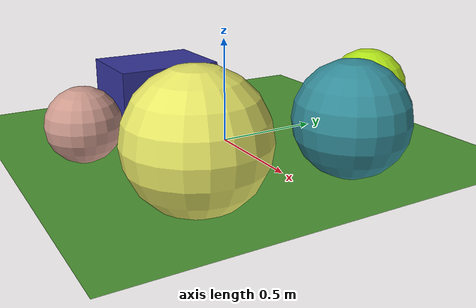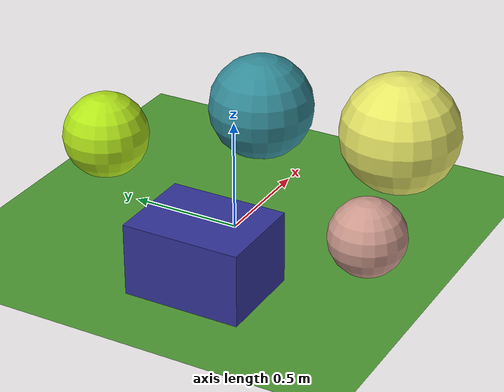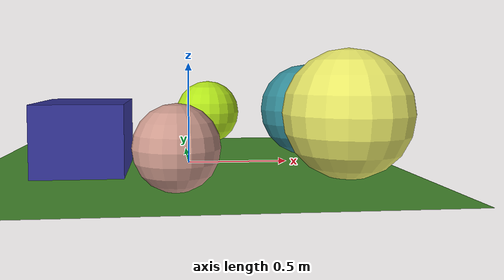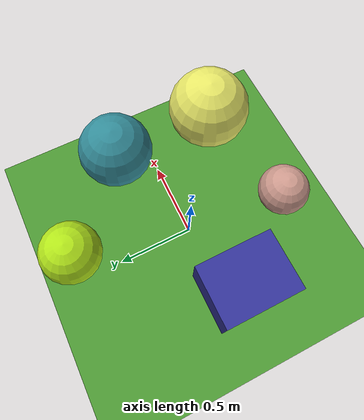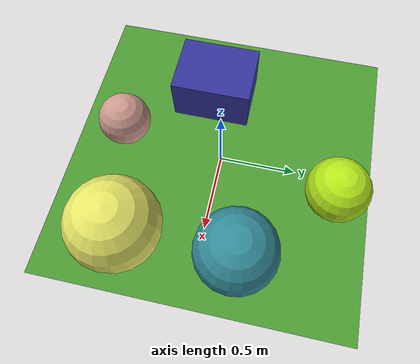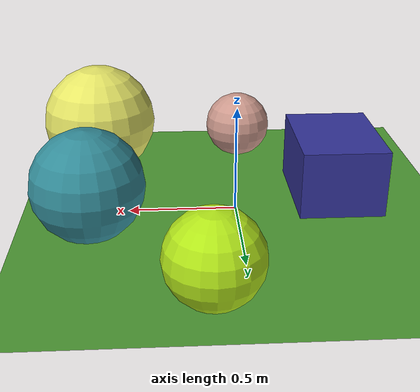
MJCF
<mujoco>
   <asset>
<texture type="skybox" builtin="gradient" rgb1="0.0 0.4 0.7" rgb2="0.9 0.6 0.1" width="256" height="256"/>
<texture name="flat_0" builtin="flat" rgb1="0.9 0.9 0.4" rgb2="0.9 0.9 0.4"  width="200" height="200"/>
<texture name="checker_1" builtin="checker" type="2d" rgb1="0.3 0.3 0.2" rgb2="0.1 0.8 1.0" width="200" height="200"/>
<texture name="checker_2" builtin="checker" type="2d" rgb1="0.7 0.3 0.6" rgb2="0.9 0.9 0.5" width="200" height="200"/>
<texture name="flat_3" builtin="flat" rgb1="0.7 0.9 0.1" rgb2="0.7 0.9 0.1"  width="200" height="200"/>
<texture name="flat_4" builtin="flat" rgb1="0.2 0.2 0.6" rgb2="0.2 0.2 0.6"  width="200" height="200"/><material name="flat_0_mat" reflectance="0" texture="flat_0" texuniform="true"/>
<material name="checker_1_mat" reflectance="0" texrepeat="4 4" texture="checker_1" texuniform="false" />
<material name="checker_2_mat" reflectance="0" texrepeat="10 10" texture="checker_2" texuniform="false" />
<material name="flat_3_mat" reflectance="0" texture="flat_3" texuniform="true"/>
<material name="flat_4_mat" reflectance="0" texture="flat_4" texuniform="true"/>
   </asset>

   <worldbody>
      <light diffuse=".9 .9 .9" pos="0 0 3" dir="0 0 -1"/>
     <geom type="plane" size="1 1 0.1" rgba="0.3 0.6 0.2 1"/>
<geom type="sphere" pos="0.66 -0.48 0.28" size="0.28 0.28 0.28" material="flat_0_mat" />
<geom type="sphere" pos="0.66 0.23 0.25" size="0.25 0.25 0.25" material="checker_1_mat" />
<geom type="sphere" pos="-0.07 -0.67 0.17" size="0.17 0.17 0.17" material="checker_2_mat" />
<geom type="sphere" pos="0.15 0.76 0.2" size="0.2 0.2 0.2" material="flat_3_mat" />
<geom type="box" pos="-0.49 -0.14 0.16" size="0.2 0.26 0.16" material="flat_4_mat" /><camera euler="60 0 180" fovy="60" name="camera_a" pos="0 -1.5 1"></camera>   </worldbody>
</mujoco>
